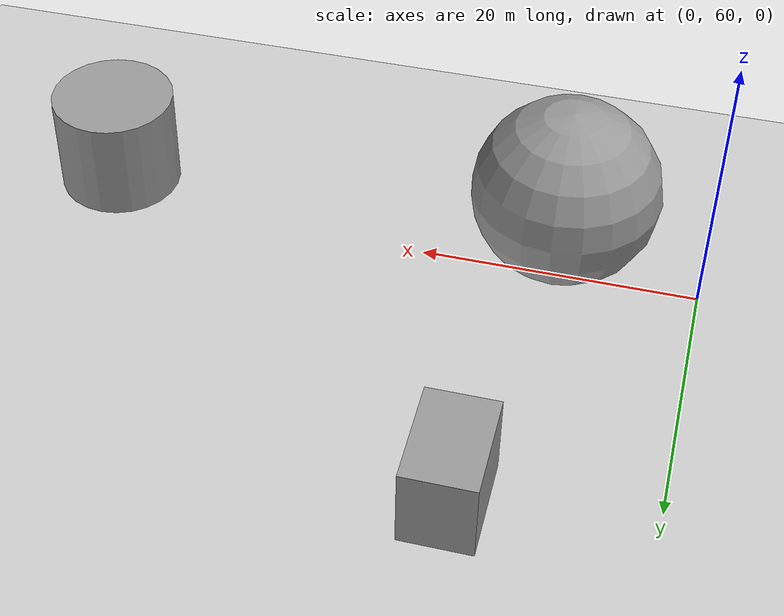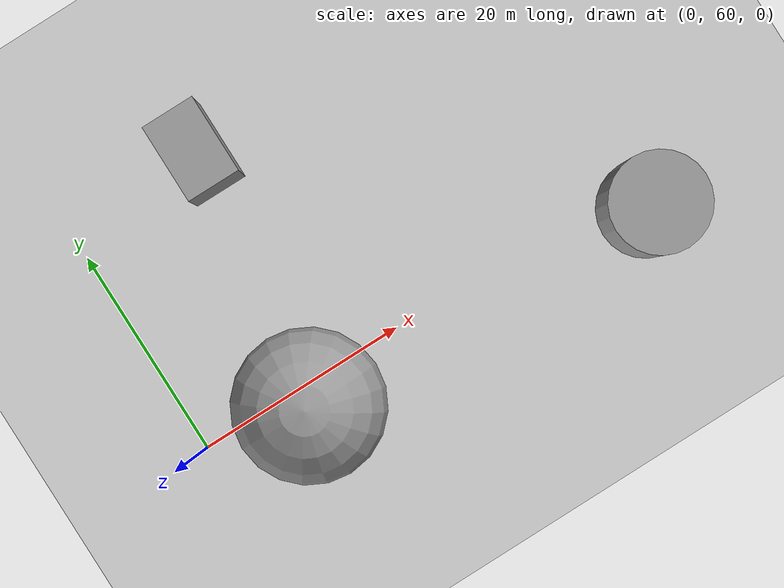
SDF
<sdf version="1.6">
 <world name="default">
  <model name="cft_service_plane">
   <static>1</static>
   <link name="link">
    <collision name="collision">
     <geometry><plane><normal>0 0 1</normal><size>355 355</size></plane></geometry>
     <surface><friction><ode><mu>100</mu><mu2>50</mu2></ode></friction></surface>
    </collision>
    <visual name="visual">
     <cast_shadows>0</cast_shadows>
     <geometry><plane><normal>0 0 1</normal><size>355 355</size></plane></geometry>
     <material>
      <script>
       <uri>model://cft_service_plane/materials/scripts</uri>
       <uri>model://cft_service_plane/materials/textures</uri>
       <name>CftServicePlane/Image</name>
      </script>
     </material>
    </visual>
   </link>
   <pose>-4.25002 -0.610438 0 0 -0 0</pose>
  </model>
  <model name="unit_box_0">
   <pose>13.3286 82.3635 3.04655 -1e-06 -0 -0.002697</pose>
   <link name="link">
    <inertial>
     <mass>1</mass>
     <inertia>
      <ixx>0.166667</ixx>
      <ixy>0</ixy>
      <ixz>0</ixz>
      <iyy>0.166667</iyy>
      <iyz>0</iyz>
      <izz>0.166667</izz>
     </inertia>
    </inertial>
    <collision name="collision"><geometry><box><size>5.03138 7.4566 6.09309</size></box></geometry></collision>
    <visual name="visual">
     <geometry><box><size>5.03138 7.4566 6.09309</size></box></geometry>
     <material>
      <script><name>Gazebo/Grey</name><uri>file://media/materials/scripts/gazebo.material</uri></script>
     </material>
    </visual>
   </link>
  </model>
  <model name="unit_sphere_0">
   <pose>10.189 58.4474 6.73754 0 -0 0</pose>
   <link name="link">
    <inertial>
     <mass>1</mass>
     <inertia><ixx>0.1</ixx><ixy>0</ixy><ixz>0</ixz><iyy>0.1</iyy><iyz>0</iyz><izz>0.1</izz></inertia>
    </inertial>
    <collision name="collision"><geometry><sphere><radius>6.73755</radius></sphere></geometry></collision>
    <visual name="visual">
     <geometry><sphere><radius>6.73755</radius></sphere></geometry>
     <material>
      <script><name>Gazebo/Grey</name><uri>file://media/materials/scripts/gazebo.material</uri></script>
     </material>
    </visual>
   </link>
  </model>
  <model name="unit_cylinder_0">
   <pose>44.484 57.0865 3.80359 0 -0 0.000903</pose>
   <link name="link">
    <inertial>
     <mass>1</mass>
     <inertia><ixx>0.145833</ixx><ixy>0</ixy><ixz>0</ixz><iyy>0.145833</iyy><iyz>0</iyz><izz>0.125</izz></inertia>
    </inertial>
    <collision name="collision">
     <geometry><cylinder><radius>4.5069</radius><length>7.60718</length></cylinder></geometry>
    </collision>
    <visual name="visual">
     <geometry><cylinder><radius>4.5069</radius><length>7.60718</length></cylinder></geometry>
     <material>
      <script><name>Gazebo/Grey</name><uri>file://media/materials/scripts/gazebo.material</uri></script>
     </material>
    </visual>
   </link>
  </model>
 </world>
</sdf>
